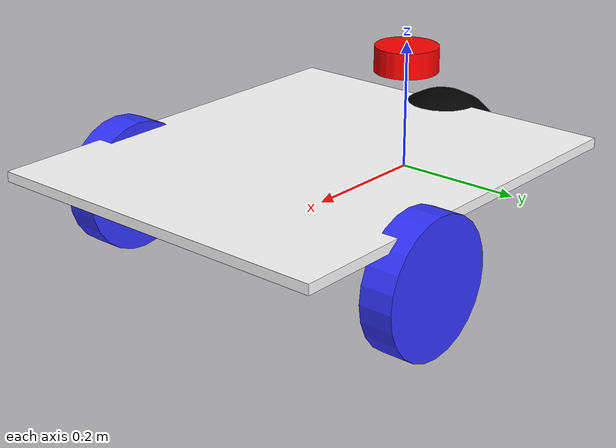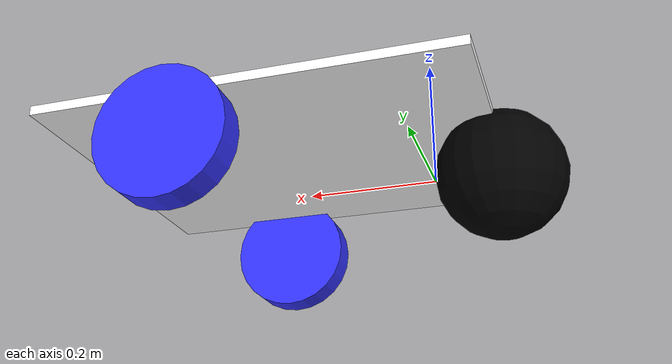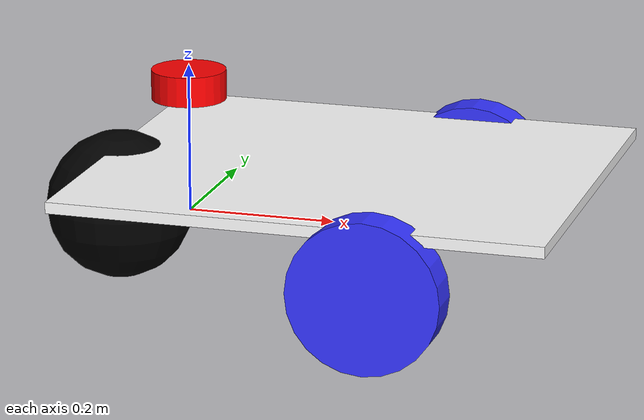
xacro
<?xml version="1.0"?>
<robot xmlns:xacro="http://www.ros.org/wiki/xacro"  name="robot">

    <xacro:include filename="robot_core.xacro" />
    <xacro:include filename="ros2_control.xacro" />
    <xacro:include filename="lidar.xacro" />

</robot>

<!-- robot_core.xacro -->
<robot xmlns:xacro="http://www.ros.org/wiki/xacro" >

    <xacro:include filename="inertial_macros.xacro"/>

    <material name="white">
        <color rgba="1 1 1 1" />
    </material>

    <material name="orange">
        <color rgba="1 0.3 0.1 1" />
    </material>

    <material name="blue">
        <color rgba="0.2 0.2 1 1" />
    </material>

    <material name="black">
        <color rgba="0 0 0 1" />
    </material>

    <material name="red">
        <color rgba="1.0 0.0 0.0 1.0"/>
    </material>

    <link name="base_link">
    </link>

    <joint name="base_footprint_joint" type="fixed">
        <parent link="base_link"/>
        <child link="base_footprint"/>
        <origin xyz="-0 0 0" rpy="0 0 0"/>
    </joint>

    <link name="base_footprint">
    </link>

    <joint name="chassis_joint" type="fixed">
        <parent link="base_link"/>
        <child link="chassis"/>
        <origin xyz="-0.1 0 0"/>
    </joint>

    <link name="chassis">
        <visual>
            <origin xyz="0.325 0 0.075"/>
            <geometry>
                <box size="0.65 0.55 0.015"/>
            </geometry>
            <material name="white"/>
        </visual>
        <collision>
            <origin xyz="0.325 0 0.075"/>
            <geometry>
                <box size="0.65 0.55 0.015"/>
            </geometry>
        </collision>
        <xacro:inertial_box mass="0.5" x="0.65" y="0.55" z="0.015">
            <origin xyz="0.325 0 0.075" rpy="0 0 0"/>
        </xacro:inertial_box>
    </link>
    <gazebo reference="chassis">
        <material>Gazebo/White</material>
    </gazebo>

    <!-- Left wheel joint and link -->
    <joint name="left_wheel_joint" type="continuous">
        <parent link="base_link"/>
        <child link="left_wheel"/>
        <origin xyz="0.325 0.275 0" rpy="-${pi/2} 0 0"/>  <!-- Position adjusted to the edge -->
        <axis xyz="0 0 1"/>
    </joint>

    <link name="left_wheel">
        <visual>
            <geometry>
                <cylinder radius="0.1" length="0.05"/>
            </geometry>
            <material name="blue"/>
        </visual>
        <collision>
            <geometry>
                <cylinder radius="0.1" length="0.05"/>
            </geometry>
        </collision>
        <xacro:inertial_cylinder mass="0.1" length="0.05" radius="0.1">
            <origin xyz="0 0 0" rpy="0 0 0"/>
        </xacro:inertial_cylinder>
    </link>
    <gazebo reference="left_wheel">
        <material>Gazebo/Blue</material>
    </gazebo>

    <!-- Right wheel joint and link -->
    <joint name="right_wheel_joint" type="continuous">
        <parent link="base_link"/>
        <child link="right_wheel"/>
        <origin xyz="0.325 -0.275 0" rpy="${pi/2} 0 0"/> <!-- Position adjusted to the edge -->
        <axis xyz="0 0 -1"/>
    </joint>

    <link name="right_wheel">
        <visual>
            <geometry>
                <cylinder radius="0.1" length="0.05"/>
            </geometry>
            <material name="blue"/>
        </visual>
        <collision>
            <geometry>
                <cylinder radius="0.1" length="0.05"/>
            </geometry>
        </collision>
        <xacro:inertial_cylinder mass="0.1" length="0.05" radius="0.1">
            <origin xyz="0 0 0" rpy="0 0 0"/>
        </xacro:inertial_cylinder>
    </link>
    <gazebo reference="right_wheel">
        <material>Gazebo/Blue</material>
    </gazebo>

    <!-- Caster wheel joint and link -->
    <joint name="caster_wheel_joint" type="fixed">
        <parent link="chassis"/>
        <child link="caster_wheel"/>
        <origin xyz="0 0 0"/>  <!-- Position adjusted to the edge -->
    </joint>

    <link name="caster_wheel">
        <visual>
            <geometry>
                <sphere radius="0.1"/>
            </geometry>
            <material name="black"/>
        </visual>
        <collision>
            <geometry>
                <sphere radius="0.1"/>
            </geometry>
        </collision>
        <xacro:inertial_sphere mass="0.1" radius="0.05">
            <origin xyz="0 0 0" rpy="0 0 0"/>
        </xacro:inertial_sphere>
    </link>

    <gazebo reference="caster_wheel">
        <material>Gazebo/Black</material>
        <mu1 value="0.001" />
        <mu2 value="0.001" />
    </gazebo>

</robot>

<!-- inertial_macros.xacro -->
<robot xmlns:xacro="http://www.ros.org/wiki/xacro" >

    <!-- Specify some standard inertial calculations https://en.wikipedia.org/wiki/List_of_moments_of_inertia -->
    <!-- These make use of xacro's mathematical functionality -->

    <xacro:macro name="inertial_sphere" params="mass radius *origin">
        <inertial>
            <xacro:insert_block name="origin"/>
            <mass value="${mass}" />
            <inertia ixx="${(2/5) * mass * (radius*radius)}" ixy="0.0" ixz="0.0"
                    iyy="${(2/5) * mass * (radius*radius)}" iyz="0.0"
                    izz="${(2/5) * mass * (radius*radius)}" />
        </inertial>
    </xacro:macro>

    <xacro:macro name="inertial_box" params="mass x y z *origin">
        <inertial>
            <xacro:insert_block name="origin"/>
            <mass value="${mass}" />
            <inertia ixx="${(1/12) * mass * (y*y+z*z)}" ixy="0.0" ixz="0.0"
                    iyy="${(1/12) * mass * (x*x+z*z)}" iyz="0.0"
                    izz="${(1/12) * mass * (x*x+y*y)}" />
        </inertial>
    </xacro:macro>

    <xacro:macro name="inertial_cylinder" params="mass length radius *origin">
        <inertial>
            <xacro:insert_block name="origin"/>
            <mass value="${mass}" />
            <inertia ixx="${(1/12) * mass * (3*radius*radius + length*length)}" ixy="0.0" ixz="0.0"
                    iyy="${(1/12) * mass * (3*radius*radius + length*length)}" iyz="0.0"
                    izz="${(1/2) * mass * (radius*radius)}" />
        </inertial>
    </xacro:macro>

</robot>

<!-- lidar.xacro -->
<robot xmlns:xacro="http://www.ros.org/wiki/xacro" >

    <joint name="laser_joint" type="fixed">
        <parent link="chassis"/>
        <child link="laser_frame"/>
        <origin xyz="0.1 0 0.175" rpy="0 0 0"/>
    </joint>

    <link name="laser_frame">
        <visual>
            <geometry>
                <cylinder radius="0.05" length="0.04"/>
            </geometry>
            <material name="red"/>
        </visual>
        <collision>
            <geometry>
                <cylinder radius="0.05" length="0.04"/>
            </geometry>
        </collision>
        <xacro:inertial_cylinder mass="0.1" length="0.04" radius="0.05">
            <origin xyz="0 0 0" rpy="0 0 0"/>
        </xacro:inertial_cylinder>
    </link>

    <gazebo reference="laser_frame">
        <material>Gazebo/Red</material>

        <sensor name="laser" type="ray">
            <pose> 0 0 0 0 0 0 </pose>
            <visualize>true</visualize>
            <update_rate>10</update_rate>
            <ray>
                <scan>
                    <horizontal>
                        <samples>360</samples>
                        <min_angle>-3.14</min_angle>
                        <max_angle>3.14</max_angle>
                    </horizontal>
                </scan>
                <range>
                    <min>0.3</min>
                    <max>12</max>
                </range>
            </ray>
            <plugin name="laser_controller" filename="libgazebo_ros_ray_sensor.so">
                <ros>
                    <argument>~/out:=scan</argument>
                </ros>
                <output_type>sensor_msgs/LaserScan</output_type>
                <frame_name>laser_frame</frame_name>
            </plugin>
        </sensor>
    </gazebo>

</robot>
